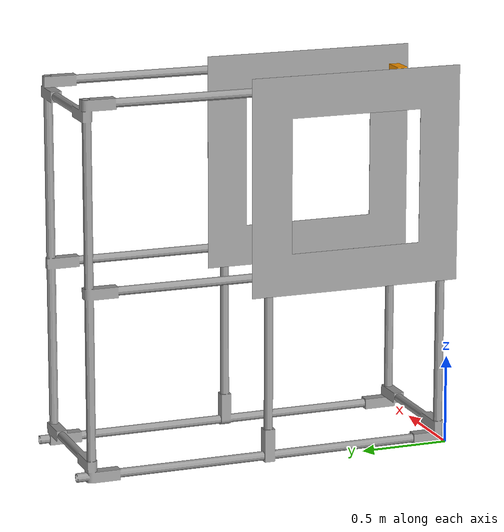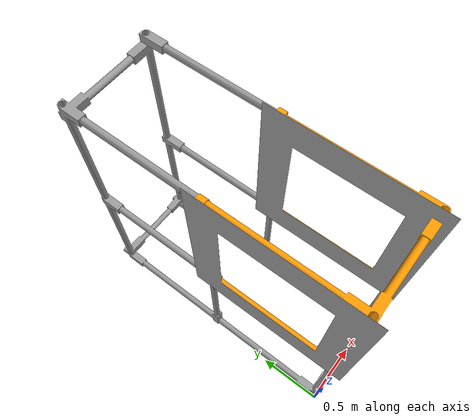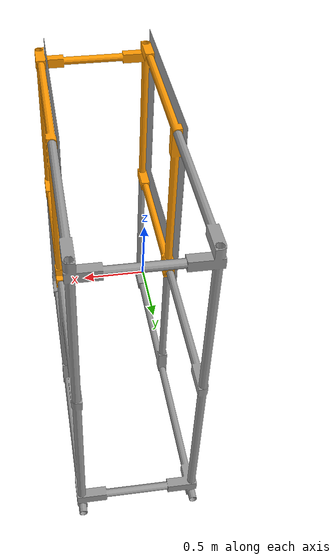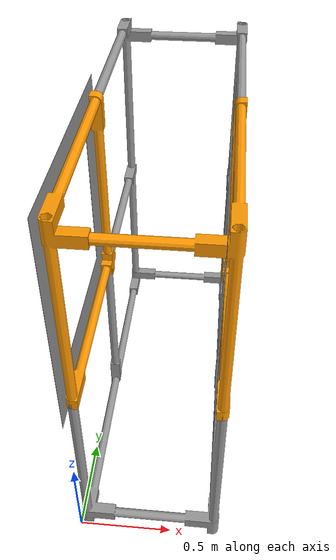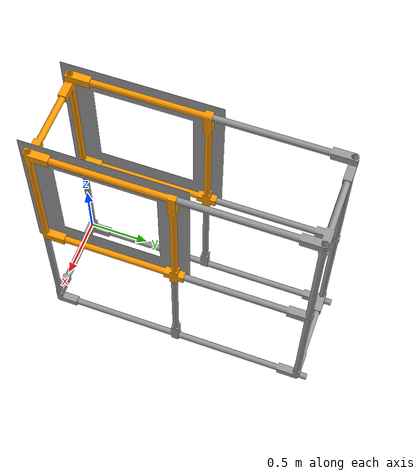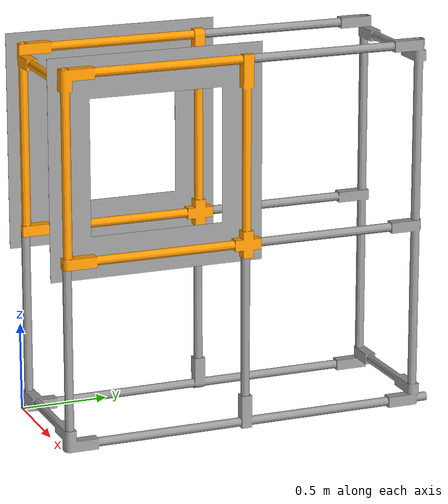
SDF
<?xml version='1.0'?>
<sdf version='1.6'>
  <model name='jungle_gym'>
    <link name='link_0'>
      <pose frame=''>0 0 0 0 -0 0</pose>
      <inertial>
        <mass>1</mass>
        <inertia>
          <ixx>0.166667</ixx>
          <ixy>0</ixy>
          <ixz>0</ixz>
          <iyy>0.166667</iyy>
          <iyz>0</iyz>
          <izz>0.166667</izz>
        </inertia>
        <pose frame=''>0 0 0 0 -0 0</pose>
      </inertial>
      <self_collide>0</self_collide>
      <kinematic>0</kinematic>
      <visual name='visual'>
        <pose frame=''>0 0 0 0 -0 0</pose>
        <geometry>
          <mesh>
            <uri>model://jungle_gym/meshes/junglegymgrey.stl</uri>
            <scale>1 1 1</scale>
          </mesh>
        </geometry>
        <material>
          <lighting>1</lighting>
          <script>
            <uri>file://media/materials/scripts/gazebo.material</uri>
            <name>Gazebo/Grey</name>
          </script>
          <ambient>0.5 0.5 0.5 1</ambient>
          <diffuse>0.5 0.5 0.5 1</diffuse>
          <specular>0.01 0.01 0.01 1</specular>
          <emissive>0 0 0 1</emissive>
          <shader type='vertex'>
            <normal_map>__default__</normal_map>
          </shader>
        </material>
        <cast_shadows>1</cast_shadows>
        <transparency>0</transparency>
      </visual>
      <collision name='collision'>
        <laser_retro>0</laser_retro>
        <max_contacts>10</max_contacts>
        <pose frame=''>0 0 0 0 -0 0</pose>
        <geometry>
          <mesh>
            <uri>model://jungle_gym/meshes/junglegymgrey.stl</uri>
          </mesh>
        </geometry>
        <surface>
          <friction>
            <ode>
              <mu>1</mu>
              <mu2>1</mu2>
              <fdir1>0 0 0</fdir1>
              <slip1>0</slip1>
              <slip2>0</slip2>
            </ode>
            <torsional>
              <coefficient>1</coefficient>
              <patch_radius>0</patch_radius>
              <surface_radius>0</surface_radius>
              <use_patch_radius>1</use_patch_radius>
              <ode>
                <slip>0</slip>
              </ode>
            </torsional>
          </friction>
          <bounce>
            <restitution_coefficient>0</restitution_coefficient>
            <threshold>1e+06</threshold>
          </bounce>
          <contact>
            <collide_without_contact>0</collide_without_contact>
            <collide_without_contact_bitmask>1</collide_without_contact_bitmask>
            <collide_bitmask>1</collide_bitmask>
            <ode>
              <soft_cfm>0</soft_cfm>
              <soft_erp>0.2</soft_erp>
              <kp>1e+13</kp>
              <kd>1</kd>
              <max_vel>0.01</max_vel>
              <min_depth>0</min_depth>
            </ode>
            <bullet>
              <split_impulse>1</split_impulse>
              <split_impulse_penetration_threshold>-0.01</split_impulse_penetration_threshold>
              <soft_cfm>0</soft_cfm>
              <soft_erp>0.2</soft_erp>
              <kp>1e+13</kp>
              <kd>1</kd>
            </bullet>
          </contact>
        </surface>
      </collision>
    </link>
    <link name='link_1'>
      <pose frame=''>0 0 0 0 -0 0</pose>
      <inertial>
        <mass>1</mass>
        <inertia>
          <ixx>0.166667</ixx>
          <ixy>0</ixy>
          <ixz>0</ixz>
          <iyy>0.166667</iyy>
          <iyz>0</iyz>
          <izz>0.166667</izz>
        </inertia>
        <pose frame=''>0 0 0 0 -0 0</pose>
      </inertial>
      <self_collide>0</self_collide>
      <kinematic>0</kinematic>
      <visual name='visual'>
        <pose frame=''>0 0 0 0 -0 0</pose>
        <geometry>
          <mesh>
            <uri>model://jungle_gym/meshes/junglegymorange.stl</uri>
            <scale>1 1 1</scale>
          </mesh>
        </geometry>
        <material>
          <lighting>1</lighting>
          <script>
            <uri>file://media/materials/scripts/gazebo.material</uri>
            <name>Gazebo/Grey</name>
          </script>
          <ambient>1 0.6 0.0 1</ambient>
          <diffuse>1 0.6 0.0 1</diffuse>
          <specular>0.01 0.01 0.01 1</specular>
          <emissive>0 0 0 1</emissive>
          <shader type='vertex'>
            <normal_map>__default__</normal_map>
          </shader>
        </material>
        <cast_shadows>1</cast_shadows>
        <transparency>0</transparency>
      </visual>
      <collision name='collision'>
        <laser_retro>0</laser_retro>
        <max_contacts>10</max_contacts>
        <pose frame=''>0 0 0 0 -0 0</pose>
        <geometry>
          <mesh>
            <uri>model://jungle_gym/meshes/junglegymorange.stl</uri>
          </mesh>
        </geometry>
        <surface>
          <friction>
            <ode>
              <mu>1</mu>
              <mu2>1</mu2>
              <fdir1>0 0 0</fdir1>
              <slip1>0</slip1>
              <slip2>0</slip2>
            </ode>
            <torsional>
              <coefficient>1</coefficient>
              <patch_radius>0</patch_radius>
              <surface_radius>0</surface_radius>
              <use_patch_radius>1</use_patch_radius>
              <ode>
                <slip>0</slip>
              </ode>
            </torsional>
          </friction>
          <bounce>
            <restitution_coefficient>0</restitution_coefficient>
            <threshold>1e+06</threshold>
          </bounce>
          <contact>
            <collide_without_contact>0</collide_without_contact>
            <collide_without_contact_bitmask>1</collide_without_contact_bitmask>
            <collide_bitmask>1</collide_bitmask>
            <ode>
              <soft_cfm>0</soft_cfm>
              <soft_erp>0.2</soft_erp>
              <kp>1e+13</kp>
              <kd>1</kd>
              <max_vel>0.01</max_vel>
              <min_depth>0</min_depth>
            </ode>
            <bullet>
              <split_impulse>1</split_impulse>
              <split_impulse_penetration_threshold>-0.01</split_impulse_penetration_threshold>
              <soft_cfm>0</soft_cfm>
              <soft_erp>0.2</soft_erp>
              <kp>1e+13</kp>
              <kd>1</kd>
            </bullet>
          </contact>
        </surface>
      </collision>
    </link>
    <link name='link_2'>
      <pose frame=''>0 -0.05 0.3 0 -1.57 0</pose>
      <inertial>
        <mass>1</mass>
        <inertia>
          <ixx>0.166667</ixx>
          <ixy>0</ixy>
          <ixz>0</ixz>
          <iyy>0.166667</iyy>
          <iyz>0</iyz>
          <izz>0.166667</izz>
        </inertia>
        <pose frame=''>0 0 0 0 -0 0</pose>
      </inertial>
      <self_collide>0</self_collide>
      <kinematic>0</kinematic>
      <gravity>1</gravity>
      <visual name='visual'>
        <pose frame=''>0 0 0 0 -0 0</pose>
        <geometry>
          <mesh>
            <uri>model://jungle_gym/meshes/background.stl</uri>
            <scale>1.1 1.1 1</scale>
          </mesh>
        </geometry>
        <material>
          <lighting>1</lighting>
          <script>
            <uri>file://media/materials/scripts/gazebo.material</uri>
            <name>Gazebo/Grey</name>
          </script>
          <ambient>0.9 0.9 0.9 1</ambient>
          <diffuse>0.9 0.9 0.9 1</diffuse>
          <specular>0.01 0.01 0.01 1</specular>
          <emissive>0 0 0 1</emissive>
          <shader type='vertex'>
            <normal_map>__default__</normal_map>
          </shader>
        </material>
        <cast_shadows>1</cast_shadows>
        <transparency>0</transparency>
      </visual>
      <collision name='collision'>
        <laser_retro>0</laser_retro>
        <max_contacts>10</max_contacts>
        <pose frame=''>0 0 0 0 -0 0</pose>
        <geometry>
          <mesh>
            <uri>model://jungle_gym/meshes/background.stl</uri>
          </mesh>
        </geometry>
        <surface>
          <friction>
            <ode>
              <mu>1</mu>
              <mu2>1</mu2>
              <fdir1>0 0 0</fdir1>
              <slip1>0</slip1>
              <slip2>0</slip2>
            </ode>
            <torsional>
              <coefficient>1</coefficient>
              <patch_radius>0</patch_radius>
              <surface_radius>0</surface_radius>
              <use_patch_radius>1</use_patch_radius>
              <ode>
                <slip>0</slip>
              </ode>
            </torsional>
          </friction>
          <bounce>
            <restitution_coefficient>0</restitution_coefficient>
            <threshold>1e+06</threshold>
          </bounce>
          <contact>
            <collide_without_contact>0</collide_without_contact>
            <collide_without_contact_bitmask>1</collide_without_contact_bitmask>
            <collide_bitmask>1</collide_bitmask>
            <ode>
              <soft_cfm>0</soft_cfm>
              <soft_erp>0.2</soft_erp>
              <kp>1e+13</kp>
              <kd>1</kd>
              <max_vel>0.01</max_vel>
              <min_depth>0</min_depth>
            </ode>
            <bullet>
              <split_impulse>1</split_impulse>
              <split_impulse_penetration_threshold>-0.01</split_impulse_penetration_threshold>
              <soft_cfm>0</soft_cfm>
              <soft_erp>0.2</soft_erp>
              <kp>1e+13</kp>
              <kd>1</kd>
            </bullet>
          </contact>
        </surface>
      </collision>
    </link>
    <link name='link_2_clone'>
      <pose frame=''>0.7 -0.05 0.3 0 -1.57 0</pose>
      <inertial>
        <mass>1</mass>
        <inertia>
          <ixx>0.166667</ixx>
          <ixy>0</ixy>
          <ixz>0</ixz>
          <iyy>0.166667</iyy>
          <iyz>0</iyz>
          <izz>0.166667</izz>
        </inertia>
        <pose frame=''>0 0 0 0 -0 0</pose>
      </inertial>
      <self_collide>0</self_collide>
      <kinematic>0</kinematic>
      <gravity>1</gravity>
      <visual name='visual'>
        <pose frame=''>0 0 0 0 -0 0</pose>
        <geometry>
          <mesh>
            <uri>model://jungle_gym/meshes/background.stl</uri>
            <scale>1.1 1.1 1</scale>
          </mesh>
        </geometry>
        <material>
          <lighting>1</lighting>
          <script>
            <uri>file://media/materials/scripts/gazebo.material</uri>
            <name>Gazebo/Grey</name>
          </script>
          <ambient>0.9 0.9 0.9 1</ambient>
          <diffuse>0.9 0.9 0.9 1</diffuse>
          <specular>0.01 0.01 0.01 1</specular>
          <emissive>0 0 0 1</emissive>
          <shader type='vertex'>
            <normal_map>__default__</normal_map>
          </shader>
        </material>
        <cast_shadows>1</cast_shadows>
        <transparency>0</transparency>
      </visual>
      <collision name='collision'>
        <laser_retro>0</laser_retro>
        <max_contacts>10</max_contacts>
        <pose frame=''>0 0 0 0 -0 0</pose>
        <geometry>
          <mesh>
            <uri>model://jungle_gym/meshes/background.stl</uri>
          </mesh>
        </geometry>
        <surface>
          <friction>
            <ode>
              <mu>1</mu>
              <mu2>1</mu2>
              <fdir1>0 0 0</fdir1>
              <slip1>0</slip1>
              <slip2>0</slip2>
            </ode>
            <torsional>
              <coefficient>1</coefficient>
              <patch_radius>0</patch_radius>
              <surface_radius>0</surface_radius>
              <use_patch_radius>1</use_patch_radius>
              <ode>
                <slip>0</slip>
              </ode>
            </torsional>
          </friction>
          <bounce>
            <restitution_coefficient>0</restitution_coefficient>
            <threshold>1e+06</threshold>
          </bounce>
          <contact>
            <collide_without_contact>0</collide_without_contact>
            <collide_without_contact_bitmask>1</collide_without_contact_bitmask>
            <collide_bitmask>1</collide_bitmask>
            <ode>
              <soft_cfm>0</soft_cfm>
              <soft_erp>0.2</soft_erp>
              <kp>1e+13</kp>
              <kd>1</kd>
              <max_vel>0.01</max_vel>
              <min_depth>0</min_depth>
            </ode>
            <bullet>
              <split_impulse>1</split_impulse>
              <split_impulse_penetration_threshold>-0.01</split_impulse_penetration_threshold>
              <soft_cfm>0</soft_cfm>
              <soft_erp>0.2</soft_erp>
              <kp>1e+13</kp>
              <kd>1</kd>
            </bullet>
          </contact>
        </surface>
      </collision>
    </link>
    <static>1</static>
    <allow_auto_disable>1</allow_auto_disable>
		<plugin name="gazebo_random_position_plugin" filename="librotors_gazebo_random_position_plugin.so">
			<limitX>0.5</limitX>
			<limitY>0.5</limitY>
			<limitZ>0</limitZ>
			<activate_roll>1</activate_roll>
    </plugin>
  </model>
</sdf>
